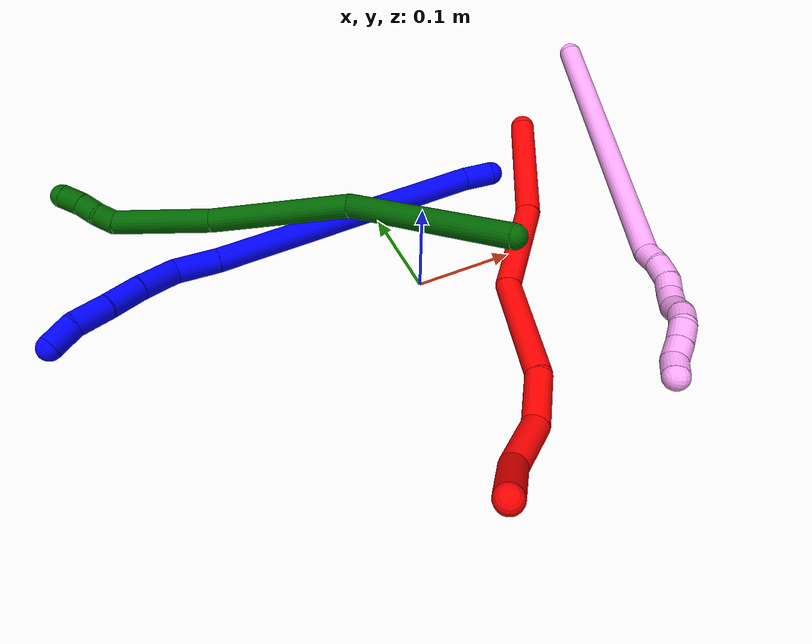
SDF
<sdf version="1.7">
 <world name="default">
  <model name="1">
   <static>0</static>
   <link name="1">
    <collision name="collision-cylinder-e_1_1_4">
     <pose>-0.01558 0.000152 -0.001564 -3.04487 -1.47028 3.03465</pose>
     <geometry><cylinder><radius>0.0125</radius><length>0.031319</length></cylinder></geometry>
     <surface>
      <friction><ode><mu>1.16</mu><mu2>1.16</mu2><slip1>0</slip1><slip2>0</slip2></ode></friction>
      <contact><ode><kp>1e+06</kp><kd>1</kd><max_vel>0</max_vel><min_depth>0.001</min_depth></ode></contact>
     </surface>
    </collision>
    <visual name="visual-cylinder-e_1_1_4">
     <pose>-0.01558 0.000152 -0.001564 -3.04487 -1.47028 3.03465</pose>
     <geometry><cylinder><radius>0.0125</radius><length>0.031319</length></cylinder></geometry>
     <material><ambient>0 0 1 1</ambient></material>
    </visual>
    <collision name="collision-cylinder-e_2_4_5">
     <pose>-0.166059 -0.002527 -0.047257 3.07755 -1.25404 -3.05323</pose>
     <geometry><cylinder><radius>0.0125</radius><length>0.283922</length></cylinder></geometry>
     <surface>
      <friction><ode><mu>1.16</mu><mu2>1.16</mu2><slip1>0</slip1><slip2>0</slip2></ode></friction>
      <contact><ode><kp>1e+06</kp><kd>1</kd><max_vel>0</max_vel><min_depth>0.001</min_depth></ode></contact>
     </surface>
    </collision>
    <visual name="visual-cylinder-e_2_4_5">
     <pose>-0.166059 -0.002527 -0.047257 3.07755 -1.25404 -3.05323</pose>
     <geometry><cylinder><radius>0.0125</radius><length>0.283922</length></cylinder></geometry>
     <material><ambient>0 0 1 1</ambient></material>
    </visual>
    <collision name="collision-cylinder-e_3_5_6">
     <pose>-0.32212 -0.00761 -0.09811 2.81826 -1.24744 -2.69581</pose>
     <geometry><cylinder><radius>0.0125</radius><length>0.044638</length></cylinder></geometry>
     <surface>
      <friction><ode><mu>1.16</mu><mu2>1.16</mu2><slip1>0</slip1><slip2>0</slip2></ode></friction>
      <contact><ode><kp>1e+06</kp><kd>1</kd><max_vel>0</max_vel><min_depth>0.001</min_depth></ode></contact>
     </surface>
    </collision>
    <visual name="visual-cylinder-e_3_5_6">
     <pose>-0.32212 -0.00761 -0.09811 2.81826 -1.24744 -2.69581</pose>
     <geometry><cylinder><radius>0.0125</radius><length>0.044638</length></cylinder></geometry>
     <material><ambient>0 0 1 1</ambient></material>
    </visual>
    <collision name="collision-cylinder-e_4_6_7">
     <pose>-0.35823 -0.01334 -0.118954 2.90014 -0.799183 -2.58212</pose>
     <geometry><cylinder><radius>0.0125</radius><length>0.041708</length></cylinder></geometry>
     <surface>
      <friction><ode><mu>1.16</mu><mu2>1.16</mu2><slip1>0</slip1><slip2>0</slip2></ode></friction>
      <contact><ode><kp>1e+06</kp><kd>1</kd><max_vel>0</max_vel><min_depth>0.001</min_depth></ode></contact>
     </surface>
    </collision>
    <visual name="visual-cylinder-e_4_6_7">
     <pose>-0.35823 -0.01334 -0.118954 2.90014 -0.799183 -2.58212</pose>
     <geometry><cylinder><radius>0.0125</radius><length>0.041708</length></cylinder></geometry>
     <material><ambient>0 0 1 1</ambient></material>
    </visual>
    <collision name="collision-cylinder-e_5_7_8">
     <pose>-0.38592 -0.018161 -0.145033 3.02974 -0.813932 -2.88327</pose>
     <geometry><cylinder><radius>0.0125</radius><length>0.035055</length></cylinder></geometry>
     <surface>
      <friction><ode><mu>1.16</mu><mu2>1.16</mu2><slip1>0</slip1><slip2>0</slip2></ode></friction>
      <contact><ode><kp>1e+06</kp><kd>1</kd><max_vel>0</max_vel><min_depth>0.001</min_depth></ode></contact>
     </surface>
    </collision>
    <visual name="visual-cylinder-e_5_7_8">
     <pose>-0.38592 -0.018161 -0.145033 3.02974 -0.813932 -2.88327</pose>
     <geometry><cylinder><radius>0.0125</radius><length>0.035055</length></cylinder></geometry>
     <material><ambient>0 0 1 1</ambient></material>
    </visual>
    <collision name="collision-cylinder-e_6_8_9">
     <pose>-0.412641 -0.020431 -0.167875 3.05663 -0.90755 -2.96773</pose>
     <geometry><cylinder><radius>0.0125</radius><length>0.035478</length></cylinder></geometry>
     <surface>
      <friction><ode><mu>1.16</mu><mu2>1.16</mu2><slip1>0</slip1><slip2>0</slip2></ode></friction>
      <contact><ode><kp>1e+06</kp><kd>1</kd><max_vel>0</max_vel><min_depth>0.001</min_depth></ode></contact>
     </surface>
    </collision>
    <visual name="visual-cylinder-e_6_8_9">
     <pose>-0.412641 -0.020431 -0.167875 3.05663 -0.90755 -2.96773</pose>
     <geometry><cylinder><radius>0.0125</radius><length>0.035478</length></cylinder></geometry>
     <material><ambient>0 0 1 1</ambient></material>
    </visual>
    <collision name="collision-cylinder-e_7_9_2">
     <pose>-0.436159 -0.018555 -0.188528 -2.86223 -0.753693 2.45888</pose>
     <geometry><cylinder><radius>0.0125</radius><length>0.02788</length></cylinder></geometry>
     <surface>
      <friction><ode><mu>1.16</mu><mu2>1.16</mu2><slip1>0</slip1><slip2>0</slip2></ode></friction>
      <contact><ode><kp>1e+06</kp><kd>1</kd><max_vel>0</max_vel><min_depth>0.001</min_depth></ode></contact>
     </surface>
    </collision>
    <visual name="visual-cylinder-e_7_9_2">
     <pose>-0.436159 -0.018555 -0.188528 -2.86223 -0.753693 2.45888</pose>
     <geometry><cylinder><radius>0.0125</radius><length>0.02788</length></cylinder></geometry>
     <material><ambient>0 0 1 1</ambient></material>
    </visual>
    <collision name="collision-sphere-2">
     <pose>-0.445698 -0.015752 -0.198299 0 -0 0</pose>
     <geometry><sphere><radius>0.0125</radius></sphere></geometry>
     <surface>
      <friction><ode><mu>1.16</mu><mu2>1.16</mu2><slip1>0</slip1><slip2>0</slip2></ode></friction>
      <contact><ode><kp>1e+06</kp><kd>1</kd><max_vel>0</max_vel><min_depth>0.001</min_depth></ode></contact>
     </surface>
    </collision>
    <visual name="visual-sphere-2">
     <pose>-0.445698 -0.015752 -0.198299 0 -0 0</pose>
     <geometry><sphere><radius>0.0125</radius></sphere></geometry>
     <material><ambient>0 0 1 1</ambient></material>
    </visual>
    <collision name="collision-sphere-9">
     <pose>-0.426619 -0.021358 -0.178758 0 -0 0</pose>
     <geometry><sphere><radius>0.0125</radius></sphere></geometry>
     <surface>
      <friction><ode><mu>1.16</mu><mu2>1.16</mu2><slip1>0</slip1><slip2>0</slip2></ode></friction>
      <contact><ode><kp>1e+06</kp><kd>1</kd><max_vel>0</max_vel><min_depth>0.001</min_depth></ode></contact>
     </surface>
    </collision>
    <visual name="visual-sphere-9">
     <pose>-0.426619 -0.021358 -0.178758 0 -0 0</pose>
     <geometry><sphere><radius>0.0125</radius></sphere></geometry>
     <material><ambient>0 0 1 1</ambient></material>
    </visual>
    <collision name="collision-sphere-4">
     <pose>-0.03116 0.000303 -0.003128 0 -0 0</pose>
     <geometry><sphere><radius>0.0125</radius></sphere></geometry>
     <surface>
      <friction><ode><mu>1.16</mu><mu2>1.16</mu2><slip1>0</slip1><slip2>0</slip2></ode></friction>
      <contact><ode><kp>1e+06</kp><kd>1</kd><max_vel>0</max_vel><min_depth>0.001</min_depth></ode></contact>
     </surface>
    </collision>
    <visual name="visual-sphere-4">
     <pose>-0.03116 0.000303 -0.003128 0 -0 0</pose>
     <geometry><sphere><radius>0.0125</radius></sphere></geometry>
     <material><ambient>0 0 1 1</ambient></material>
    </visual>
    <collision name="collision-sphere-1">
     <geometry><sphere><radius>0.0125</radius></sphere></geometry>
     <surface>
      <friction><ode><mu>1.16</mu><mu2>1.16</mu2><slip1>0</slip1><slip2>0</slip2></ode></friction>
      <contact><ode><kp>1e+06</kp><kd>1</kd><max_vel>0</max_vel><min_depth>0.001</min_depth></ode></contact>
     </surface>
    </collision>
    <visual name="visual-sphere-1">
     <geometry><sphere><radius>0.0125</radius></sphere></geometry>
     <material><ambient>0 0 1 1</ambient></material>
    </visual>
    <collision name="collision-sphere-8">
     <pose>-0.398662 -0.019504 -0.156993 0 -0 0</pose>
     <geometry><sphere><radius>0.0125</radius></sphere></geometry>
     <surface>
      <friction><ode><mu>1.16</mu><mu2>1.16</mu2><slip1>0</slip1><slip2>0</slip2></ode></friction>
      <contact><ode><kp>1e+06</kp><kd>1</kd><max_vel>0</max_vel><min_depth>0.001</min_depth></ode></contact>
     </surface>
    </collision>
    <visual name="visual-sphere-8">
     <pose>-0.398662 -0.019504 -0.156993 0 -0 0</pose>
     <geometry><sphere><radius>0.0125</radius></sphere></geometry>
     <material><ambient>0 0 1 1</ambient></material>
    </visual>
    <collision name="collision-sphere-5">
     <pose>-0.300957 -0.005357 -0.091385 0 -0 0</pose>
     <geometry><sphere><radius>0.0125</radius></sphere></geometry>
     <surface>
      <friction><ode><mu>1.16</mu><mu2>1.16</mu2><slip1>0</slip1><slip2>0</slip2></ode></friction>
      <contact><ode><kp>1e+06</kp><kd>1</kd><max_vel>0</max_vel><min_depth>0.001</min_depth></ode></contact>
     </surface>
    </collision>
    <visual name="visual-sphere-5">
     <pose>-0.300957 -0.005357 -0.091385 0 -0 0</pose>
     <geometry><sphere><radius>0.0125</radius></sphere></geometry>
     <material><ambient>0 0 1 1</ambient></material>
    </visual>
    <collision name="collision-sphere-6">
     <pose>-0.343282 -0.009863 -0.104834 0 -0 0</pose>
     <geometry><sphere><radius>0.0125</radius></sphere></geometry>
     <surface>
      <friction><ode><mu>1.16</mu><mu2>1.16</mu2><slip1>0</slip1><slip2>0</slip2></ode></friction>
      <contact><ode><kp>1e+06</kp><kd>1</kd><max_vel>0</max_vel><min_depth>0.001</min_depth></ode></contact>
     </surface>
    </collision>
    <visual name="visual-sphere-6">
     <pose>-0.343282 -0.009863 -0.104834 0 -0 0</pose>
     <geometry><sphere><radius>0.0125</radius></sphere></geometry>
     <material><ambient>0 0 1 1</ambient></material>
    </visual>
    <collision name="collision-sphere-7">
     <pose>-0.373178 -0.016817 -0.133073 0 -0 0</pose>
     <geometry><sphere><radius>0.0125</radius></sphere></geometry>
     <surface>
      <friction><ode><mu>1.16</mu><mu2>1.16</mu2><slip1>0</slip1><slip2>0</slip2></ode></friction>
      <contact><ode><kp>1e+06</kp><kd>1</kd><max_vel>0</max_vel><min_depth>0.001</min_depth></ode></contact>
     </surface>
    </collision>
    <visual name="visual-sphere-7">
     <pose>-0.373178 -0.016817 -0.133073 0 -0 0</pose>
     <geometry><sphere><radius>0.0125</radius></sphere></geometry>
     <material><ambient>0 0 1 1</ambient></material>
    </visual>
    <inertial>
     <pose>-0.234568 -0.006975 -0.078207 0 -0 0</pose>
     <mass>0.5</mass>
     <inertia>
      <ixx>-0.000702</ixx>
      <ixy>0</ixy>
      <ixz>0</ixz>
      <iyy>0.001891</iyy>
      <iyz>0</iyz>
      <izz>0.001875</izz>
     </inertia>
    </inertial>
   </link>
   <pose>0.140373 0.106531 0.013632 -1.74118 -0.075998 -0.28297</pose>
  </model>
  <model name="2">
   <static>0</static>
   <link name="2">
    <collision name="collision-cylinder-e_1_1_4">
     <pose>-0.027025 -0.051498 0.000444 1.56217 -0.483252 -0.479261</pose>
     <geometry><cylinder><radius>0.0125</radius><length>0.11632</length></cylinder></geometry>
     <surface>
      <friction><ode><mu>1.16</mu><mu2>1.16</mu2><slip1>0</slip1><slip2>0</slip2></ode></friction>
      <contact><ode><kp>1e+06</kp><kd>1</kd><max_vel>0</max_vel><min_depth>0.001</min_depth></ode></contact>
     </surface>
    </collision>
    <visual name="visual-cylinder-e_1_1_4">
     <pose>-0.027025 -0.051498 0.000444 1.56217 -0.483252 -0.479261</pose>
     <geometry><cylinder><radius>0.0125</radius><length>0.11632</length></cylinder></geometry>
     <material><ambient>1 0 0 1</ambient></material>
    </visual>
    <collision name="collision-cylinder-e_2_4_5">
     <pose>-0.08628 -0.138172 0.004632 1.46476 -0.738924 -0.670166</pose>
     <geometry><cylinder><radius>0.0125</radius><length>0.095712</length></cylinder></geometry>
     <surface>
      <friction><ode><mu>1.16</mu><mu2>1.16</mu2><slip1>0</slip1><slip2>0</slip2></ode></friction>
      <contact><ode><kp>1e+06</kp><kd>1</kd><max_vel>0</max_vel><min_depth>0.001</min_depth></ode></contact>
     </surface>
    </collision>
    <visual name="visual-cylinder-e_2_4_5">
     <pose>-0.08628 -0.138172 0.004632 1.46476 -0.738924 -0.670166</pose>
     <geometry><cylinder><radius>0.0125</radius><length>0.095712</length></cylinder></geometry>
     <material><ambient>1 0 0 1</ambient></material>
    </visual>
    <collision name="collision-cylinder-e_3_5_6">
     <pose>-0.13395 -0.225882 0.022948 1.30023 -0.275983 -0.210416</pose>
     <geometry><cylinder><radius>0.0125</radius><length>0.113324</length></cylinder></geometry>
     <surface>
      <friction><ode><mu>1.16</mu><mu2>1.16</mu2><slip1>0</slip1><slip2>0</slip2></ode></friction>
      <contact><ode><kp>1e+06</kp><kd>1</kd><max_vel>0</max_vel><min_depth>0.001</min_depth></ode></contact>
     </surface>
    </collision>
    <visual name="visual-cylinder-e_3_5_6">
     <pose>-0.13395 -0.225882 0.022948 1.30023 -0.275983 -0.210416</pose>
     <geometry><cylinder><radius>0.0125</radius><length>0.113324</length></cylinder></geometry>
     <material><ambient>1 0 0 1</ambient></material>
    </visual>
    <collision name="collision-cylinder-e_4_6_7">
     <pose>-0.163865 -0.299463 0.042777 1.326 -0.588387 -0.464671</pose>
     <geometry><cylinder><radius>0.0125</radius><length>0.052157</length></cylinder></geometry>
     <surface>
      <friction><ode><mu>1.16</mu><mu2>1.16</mu2><slip1>0</slip1><slip2>0</slip2></ode></friction>
      <contact><ode><kp>1e+06</kp><kd>1</kd><max_vel>0</max_vel><min_depth>0.001</min_depth></ode></contact>
     </surface>
    </collision>
    <visual name="visual-cylinder-e_4_6_7">
     <pose>-0.163865 -0.299463 0.042777 1.326 -0.588387 -0.464671</pose>
     <geometry><cylinder><radius>0.0125</radius><length>0.052157</length></cylinder></geometry>
     <material><ambient>1 0 0 1</ambient></material>
    </visual>
    <collision name="collision-cylinder-e_5_7_8">
     <pose>-0.19806 -0.334969 0.060869 0.844853 -0.795338 -0.373218</pose>
     <geometry><cylinder><radius>0.0125</radius><length>0.055235</length></cylinder></geometry>
     <surface>
      <friction><ode><mu>1.16</mu><mu2>1.16</mu2><slip1>0</slip1><slip2>0</slip2></ode></friction>
      <contact><ode><kp>1e+06</kp><kd>1</kd><max_vel>0</max_vel><min_depth>0.001</min_depth></ode></contact>
     </surface>
    </collision>
    <visual name="visual-cylinder-e_5_7_8">
     <pose>-0.19806 -0.334969 0.060869 0.844853 -0.795338 -0.373218</pose>
     <geometry><cylinder><radius>0.0125</radius><length>0.055235</length></cylinder></geometry>
     <material><ambient>1 0 0 1</ambient></material>
    </visual>
    <collision name="collision-cylinder-e_6_8_2">
     <pose>-0.230114 -0.366056 0.100201 0.560418 -0.375506 -0.109242</pose>
     <geometry><cylinder><radius>0.0125</radius><length>0.067252</length></cylinder></geometry>
     <surface>
      <friction><ode><mu>1.16</mu><mu2>1.16</mu2><slip1>0</slip1><slip2>0</slip2></ode></friction>
      <contact><ode><kp>1e+06</kp><kd>1</kd><max_vel>0</max_vel><min_depth>0.001</min_depth></ode></contact>
     </surface>
    </collision>
    <visual name="visual-cylinder-e_6_8_2">
     <pose>-0.230114 -0.366056 0.100201 0.560418 -0.375506 -0.109242</pose>
     <geometry><cylinder><radius>0.0125</radius><length>0.067252</length></cylinder></geometry>
     <material><ambient>1 0 0 1</ambient></material>
    </visual>
    <collision name="collision-sphere-2">
     <pose>-0.242446 -0.382684 0.126699 0 -0 0</pose>
     <geometry><sphere><radius>0.0125</radius></sphere></geometry>
     <surface>
      <friction><ode><mu>1.16</mu><mu2>1.16</mu2><slip1>0</slip1><slip2>0</slip2></ode></friction>
      <contact><ode><kp>1e+06</kp><kd>1</kd><max_vel>0</max_vel><min_depth>0.001</min_depth></ode></contact>
     </surface>
    </collision>
    <visual name="visual-sphere-2">
     <pose>-0.242446 -0.382684 0.126699 0 -0 0</pose>
     <geometry><sphere><radius>0.0125</radius></sphere></geometry>
     <material><ambient>1 0 0 1</ambient></material>
    </visual>
    <collision name="collision-sphere-4">
     <pose>-0.054049 -0.102996 0.000888 0 -0 0</pose>
     <geometry><sphere><radius>0.0125</radius></sphere></geometry>
     <surface>
      <friction><ode><mu>1.16</mu><mu2>1.16</mu2><slip1>0</slip1><slip2>0</slip2></ode></friction>
      <contact><ode><kp>1e+06</kp><kd>1</kd><max_vel>0</max_vel><min_depth>0.001</min_depth></ode></contact>
     </surface>
    </collision>
    <visual name="visual-sphere-4">
     <pose>-0.054049 -0.102996 0.000888 0 -0 0</pose>
     <geometry><sphere><radius>0.0125</radius></sphere></geometry>
     <material><ambient>1 0 0 1</ambient></material>
    </visual>
    <collision name="collision-sphere-1">
     <geometry><sphere><radius>0.0125</radius></sphere></geometry>
     <surface>
      <friction><ode><mu>1.16</mu><mu2>1.16</mu2><slip1>0</slip1><slip2>0</slip2></ode></friction>
      <contact><ode><kp>1e+06</kp><kd>1</kd><max_vel>0</max_vel><min_depth>0.001</min_depth></ode></contact>
     </surface>
    </collision>
    <visual name="visual-sphere-1">
     <geometry><sphere><radius>0.0125</radius></sphere></geometry>
     <material><ambient>1 0 0 1</ambient></material>
    </visual>
    <collision name="collision-sphere-8">
     <pose>-0.217782 -0.349428 0.073703 0 -0 0</pose>
     <geometry><sphere><radius>0.0125</radius></sphere></geometry>
     <surface>
      <friction><ode><mu>1.16</mu><mu2>1.16</mu2><slip1>0</slip1><slip2>0</slip2></ode></friction>
      <contact><ode><kp>1e+06</kp><kd>1</kd><max_vel>0</max_vel><min_depth>0.001</min_depth></ode></contact>
     </surface>
    </collision>
    <visual name="visual-sphere-8">
     <pose>-0.217782 -0.349428 0.073703 0 -0 0</pose>
     <geometry><sphere><radius>0.0125</radius></sphere></geometry>
     <material><ambient>1 0 0 1</ambient></material>
    </visual>
    <collision name="collision-sphere-5">
     <pose>-0.11851 -0.173348 0.008376 0 -0 0</pose>
     <geometry><sphere><radius>0.0125</radius></sphere></geometry>
     <surface>
      <friction><ode><mu>1.16</mu><mu2>1.16</mu2><slip1>0</slip1><slip2>0</slip2></ode></friction>
      <contact><ode><kp>1e+06</kp><kd>1</kd><max_vel>0</max_vel><min_depth>0.001</min_depth></ode></contact>
     </surface>
    </collision>
    <visual name="visual-sphere-5">
     <pose>-0.11851 -0.173348 0.008376 0 -0 0</pose>
     <geometry><sphere><radius>0.0125</radius></sphere></geometry>
     <material><ambient>1 0 0 1</ambient></material>
    </visual>
    <collision name="collision-sphere-6">
     <pose>-0.14939 -0.278417 0.037519 0 -0 0</pose>
     <geometry><sphere><radius>0.0125</radius></sphere></geometry>
     <surface>
      <friction><ode><mu>1.16</mu><mu2>1.16</mu2><slip1>0</slip1><slip2>0</slip2></ode></friction>
      <contact><ode><kp>1e+06</kp><kd>1</kd><max_vel>0</max_vel><min_depth>0.001</min_depth></ode></contact>
     </surface>
    </collision>
    <visual name="visual-sphere-6">
     <pose>-0.14939 -0.278417 0.037519 0 -0 0</pose>
     <geometry><sphere><radius>0.0125</radius></sphere></geometry>
     <material><ambient>1 0 0 1</ambient></material>
    </visual>
    <collision name="collision-sphere-7">
     <pose>-0.178339 -0.32051 0.048034 0 -0 0</pose>
     <geometry><sphere><radius>0.0125</radius></sphere></geometry>
     <surface>
      <friction><ode><mu>1.16</mu><mu2>1.16</mu2><slip1>0</slip1><slip2>0</slip2></ode></friction>
      <contact><ode><kp>1e+06</kp><kd>1</kd><max_vel>0</max_vel><min_depth>0.001</min_depth></ode></contact>
     </surface>
    </collision>
    <visual name="visual-sphere-7">
     <pose>-0.178339 -0.32051 0.048034 0 -0 0</pose>
     <geometry><sphere><radius>0.0125</radius></sphere></geometry>
     <material><ambient>1 0 0 1</ambient></material>
    </visual>
    <inertial>
     <pose>-0.123087 -0.207104 0.030855 0 -0 0</pose>
     <mass>0.5</mass>
     <inertia><ixx>0.000169</ixx><ixy>0</ixy><ixz>0</ixz><iyy>-6e-06</iyy><iyz>0</iyz><izz>0.000515</izz></inertia>
    </inertial>
   </link>
   <pose>0.187956 0.125175 0.049649 0.154969 -0.16923 -0.00711</pose>
  </model>
  <model name="4">
   <static>0</static>
   <link name="4">
    <collision name="collision-cylinder-e_1_1_4">
     <pose>0.019094 -0.154698 -0.022829 1.71731 0.121506 0.140693</pose>
     <geometry><cylinder><radius>0.0125</radius><length>0.315069</length></cylinder></geometry>
     <surface>
      <friction><ode><mu>1.16</mu><mu2>1.16</mu2><slip1>0</slip1><slip2>0</slip2></ode></friction>
      <contact><ode><kp>1e+06</kp><kd>1</kd><max_vel>0</max_vel><min_depth>0.001</min_depth></ode></contact>
     </surface>
    </collision>
    <visual name="visual-cylinder-e_1_1_4">
     <pose>0.019094 -0.154698 -0.022829 1.71731 0.121506 0.140693</pose>
     <geometry><cylinder><radius>0.0125</radius><length>0.315069</length></cylinder></geometry>
     <material><ambient>1 0.65098 0.996078 1</ambient></material>
    </visual>
    <collision name="collision-cylinder-e_2_4_5">
     <pose>0.035196 -0.319573 -0.04645 1.64853 -0.285152 -0.307878</pose>
     <geometry><cylinder><radius>0.0125</radius><length>0.021276</length></cylinder></geometry>
     <surface>
      <friction><ode><mu>1.16</mu><mu2>1.16</mu2><slip1>0</slip1><slip2>0</slip2></ode></friction>
      <contact><ode><kp>1e+06</kp><kd>1</kd><max_vel>0</max_vel><min_depth>0.001</min_depth></ode></contact>
     </surface>
    </collision>
    <visual name="visual-cylinder-e_2_4_5">
     <pose>0.035196 -0.319573 -0.04645 1.64853 -0.285152 -0.307878</pose>
     <geometry><cylinder><radius>0.0125</radius><length>0.021276</length></cylinder></geometry>
     <material><ambient>1 0.65098 0.996078 1</ambient></material>
    </visual>
    <collision name="collision-cylinder-e_3_5_6">
     <pose>0.031536 -0.34146 -0.048485 1.6765 -0.056613 -0.062934</pose>
     <geometry><cylinder><radius>0.0125</radius><length>0.023589</length></cylinder></geometry>
     <surface>
      <friction><ode><mu>1.16</mu><mu2>1.16</mu2><slip1>0</slip1><slip2>0</slip2></ode></friction>
      <contact><ode><kp>1e+06</kp><kd>1</kd><max_vel>0</max_vel><min_depth>0.001</min_depth></ode></contact>
     </surface>
    </collision>
    <visual name="visual-cylinder-e_3_5_6">
     <pose>0.031536 -0.34146 -0.048485 1.6765 -0.056613 -0.062934</pose>
     <geometry><cylinder><radius>0.0125</radius><length>0.023589</length></cylinder></geometry>
     <material><ambient>1 0.65098 0.996078 1</ambient></material>
    </visual>
    <collision name="collision-cylinder-e_4_6_7">
     <pose>0.031318 -0.362327 -0.053731 1.98297 0.044893 0.06861</pose>
     <geometry><cylinder><radius>0.0125</radius><length>0.02001</length></cylinder></geometry>
     <surface>
      <friction><ode><mu>1.16</mu><mu2>1.16</mu2><slip1>0</slip1><slip2>0</slip2></ode></friction>
      <contact><ode><kp>1e+06</kp><kd>1</kd><max_vel>0</max_vel><min_depth>0.001</min_depth></ode></contact>
     </surface>
    </collision>
    <visual name="visual-cylinder-e_4_6_7">
     <pose>0.031318 -0.362327 -0.053731 1.98297 0.044893 0.06861</pose>
     <geometry><cylinder><radius>0.0125</radius><length>0.02001</length></cylinder></geometry>
     <material><ambient>1 0.65098 0.996078 1</ambient></material>
    </visual>
    <collision name="collision-cylinder-e_5_7_8">
     <pose>0.03039 -0.380434 -0.061987 2.01431 -0.138113 -0.218002</pose>
     <geometry><cylinder><radius>0.0125</radius><length>0.020005</length></cylinder></geometry>
     <surface>
      <friction><ode><mu>1.16</mu><mu2>1.16</mu2><slip1>0</slip1><slip2>0</slip2></ode></friction>
      <contact><ode><kp>1e+06</kp><kd>1</kd><max_vel>0</max_vel><min_depth>0.001</min_depth></ode></contact>
     </surface>
    </collision>
    <visual name="visual-cylinder-e_5_7_8">
     <pose>0.03039 -0.380434 -0.061987 2.01431 -0.138113 -0.218002</pose>
     <geometry><cylinder><radius>0.0125</radius><length>0.020005</length></cylinder></geometry>
     <material><ambient>1 0.65098 0.996078 1</ambient></material>
    </visual>
    <collision name="collision-cylinder-e_6_8_9">
     <pose>0.023889 -0.397333 -0.069494 1.95947 -0.537723 -0.779173</pose>
     <geometry><cylinder><radius>0.0125</radius><length>0.020006</length></cylinder></geometry>
     <surface>
      <friction><ode><mu>1.16</mu><mu2>1.16</mu2><slip1>0</slip1><slip2>0</slip2></ode></friction>
      <contact><ode><kp>1e+06</kp><kd>1</kd><max_vel>0</max_vel><min_depth>0.001</min_depth></ode></contact>
     </surface>
    </collision>
    <visual name="visual-cylinder-e_6_8_9">
     <pose>0.023889 -0.397333 -0.069494 1.95947 -0.537723 -0.779173</pose>
     <geometry><cylinder><radius>0.0125</radius><length>0.020006</length></cylinder></geometry>
     <material><ambient>1 0.65098 0.996078 1</ambient></material>
    </visual>
    <collision name="collision-cylinder-e_7_9_10">
     <pose>0.01671 -0.413463 -0.078132 2.15278 -0.207021 -0.38075</pose>
     <geometry><cylinder><radius>0.0125</radius><length>0.02001</length></cylinder></geometry>
     <surface>
      <friction><ode><mu>1.16</mu><mu2>1.16</mu2><slip1>0</slip1><slip2>0</slip2></ode></friction>
      <contact><ode><kp>1e+06</kp><kd>1</kd><max_vel>0</max_vel><min_depth>0.001</min_depth></ode></contact>
     </surface>
    </collision>
    <visual name="visual-cylinder-e_7_9_10">
     <pose>0.01671 -0.413463 -0.078132 2.15278 -0.207021 -0.38075</pose>
     <geometry><cylinder><radius>0.0125</radius><length>0.02001</length></cylinder></geometry>
     <material><ambient>1 0.65098 0.996078 1</ambient></material>
    </visual>
    <collision name="collision-cylinder-e_8_10_11">
     <pose>0.017091 -0.429615 -0.089042 2.17703 0.24612 0.464011</pose>
     <geometry><cylinder><radius>0.0125</radius><length>0.020007</length></cylinder></geometry>
     <surface>
      <friction><ode><mu>1.16</mu><mu2>1.16</mu2><slip1>0</slip1><slip2>0</slip2></ode></friction>
      <contact><ode><kp>1e+06</kp><kd>1</kd><max_vel>0</max_vel><min_depth>0.001</min_depth></ode></contact>
     </surface>
    </collision>
    <visual name="visual-cylinder-e_8_10_11">
     <pose>0.017091 -0.429615 -0.089042 2.17703 0.24612 0.464011</pose>
     <geometry><cylinder><radius>0.0125</radius><length>0.020007</length></cylinder></geometry>
     <material><ambient>1 0.65098 0.996078 1</ambient></material>
    </visual>
    <collision name="collision-cylinder-e_9_11_12">
     <pose>0.021827 -0.444999 -0.10088 2.27617 0.232002 0.494221</pose>
     <geometry><cylinder><radius>0.0125</radius><length>0.020001</length></cylinder></geometry>
     <surface>
      <friction><ode><mu>1.16</mu><mu2>1.16</mu2><slip1>0</slip1><slip2>0</slip2></ode></friction>
      <contact><ode><kp>1e+06</kp><kd>1</kd><max_vel>0</max_vel><min_depth>0.001</min_depth></ode></contact>
     </surface>
    </collision>
    <visual name="visual-cylinder-e_9_11_12">
     <pose>0.021827 -0.444999 -0.10088 2.27617 0.232002 0.494221</pose>
     <geometry><cylinder><radius>0.0125</radius><length>0.020001</length></cylinder></geometry>
     <material><ambient>1 0.65098 0.996078 1</ambient></material>
    </visual>
    <collision name="collision-cylinder-e_10_12_2">
     <pose>0.022931 -0.460987 -0.112216 2.10081 -0.119661 -0.208296</pose>
     <geometry><cylinder><radius>0.0125</radius><length>0.020028</length></cylinder></geometry>
     <surface>
      <friction><ode><mu>1.16</mu><mu2>1.16</mu2><slip1>0</slip1><slip2>0</slip2></ode></friction>
      <contact><ode><kp>1e+06</kp><kd>1</kd><max_vel>0</max_vel><min_depth>0.001</min_depth></ode></contact>
     </surface>
    </collision>
    <visual name="visual-cylinder-e_10_12_2">
     <pose>0.022931 -0.460987 -0.112216 2.10081 -0.119661 -0.208296</pose>
     <geometry><cylinder><radius>0.0125</radius><length>0.020028</length></cylinder></geometry>
     <material><ambient>1 0.65098 0.996078 1</ambient></material>
    </visual>
    <collision name="collision-sphere-2">
     <pose>0.021736 -0.469566 -0.117242 0 -0 0</pose>
     <geometry><sphere><radius>0.0125</radius></sphere></geometry>
     <surface>
      <friction><ode><mu>1.16</mu><mu2>1.16</mu2><slip1>0</slip1><slip2>0</slip2></ode></friction>
      <contact><ode><kp>1e+06</kp><kd>1</kd><max_vel>0</max_vel><min_depth>0.001</min_depth></ode></contact>
     </surface>
    </collision>
    <visual name="visual-sphere-2">
     <pose>0.021736 -0.469566 -0.117242 0 -0 0</pose>
     <geometry><sphere><radius>0.0125</radius></sphere></geometry>
     <material><ambient>1 0.65098 0.996078 1</ambient></material>
    </visual>
    <collision name="collision-sphere-12">
     <pose>0.024127 -0.452409 -0.10719 0 -0 0</pose>
     <geometry><sphere><radius>0.0125</radius></sphere></geometry>
     <surface>
      <friction><ode><mu>1.16</mu><mu2>1.16</mu2><slip1>0</slip1><slip2>0</slip2></ode></friction>
      <contact><ode><kp>1e+06</kp><kd>1</kd><max_vel>0</max_vel><min_depth>0.001</min_depth></ode></contact>
     </surface>
    </collision>
    <visual name="visual-sphere-12">
     <pose>0.024127 -0.452409 -0.10719 0 -0 0</pose>
     <geometry><sphere><radius>0.0125</radius></sphere></geometry>
     <material><ambient>1 0.65098 0.996078 1</ambient></material>
    </visual>
    <collision name="collision-sphere-11">
     <pose>0.019528 -0.437588 -0.09457 0 -0 0</pose>
     <geometry><sphere><radius>0.0125</radius></sphere></geometry>
     <surface>
      <friction><ode><mu>1.16</mu><mu2>1.16</mu2><slip1>0</slip1><slip2>0</slip2></ode></friction>
      <contact><ode><kp>1e+06</kp><kd>1</kd><max_vel>0</max_vel><min_depth>0.001</min_depth></ode></contact>
     </surface>
    </collision>
    <visual name="visual-sphere-11">
     <pose>0.019528 -0.437588 -0.09457 0 -0 0</pose>
     <geometry><sphere><radius>0.0125</radius></sphere></geometry>
     <material><ambient>1 0.65098 0.996078 1</ambient></material>
    </visual>
    <collision name="collision-sphere-10">
     <pose>0.014653 -0.421642 -0.083514 0 -0 0</pose>
     <geometry><sphere><radius>0.0125</radius></sphere></geometry>
     <surface>
      <friction><ode><mu>1.16</mu><mu2>1.16</mu2><slip1>0</slip1><slip2>0</slip2></ode></friction>
      <contact><ode><kp>1e+06</kp><kd>1</kd><max_vel>0</max_vel><min_depth>0.001</min_depth></ode></contact>
     </surface>
    </collision>
    <visual name="visual-sphere-10">
     <pose>0.014653 -0.421642 -0.083514 0 -0 0</pose>
     <geometry><sphere><radius>0.0125</radius></sphere></geometry>
     <material><ambient>1 0.65098 0.996078 1</ambient></material>
    </visual>
    <collision name="collision-sphere-9">
     <pose>0.018766 -0.405283 -0.07275 0 -0 0</pose>
     <geometry><sphere><radius>0.0125</radius></sphere></geometry>
     <surface>
      <friction><ode><mu>1.16</mu><mu2>1.16</mu2><slip1>0</slip1><slip2>0</slip2></ode></friction>
      <contact><ode><kp>1e+06</kp><kd>1</kd><max_vel>0</max_vel><min_depth>0.001</min_depth></ode></contact>
     </surface>
    </collision>
    <visual name="visual-sphere-9">
     <pose>0.018766 -0.405283 -0.07275 0 -0 0</pose>
     <geometry><sphere><radius>0.0125</radius></sphere></geometry>
     <material><ambient>1 0.65098 0.996078 1</ambient></material>
    </visual>
    <collision name="collision-sphere-4">
     <pose>0.038189 -0.309395 -0.045657 0 -0 0</pose>
     <geometry><sphere><radius>0.0125</radius></sphere></geometry>
     <surface>
      <friction><ode><mu>1.16</mu><mu2>1.16</mu2><slip1>0</slip1><slip2>0</slip2></ode></friction>
      <contact><ode><kp>1e+06</kp><kd>1</kd><max_vel>0</max_vel><min_depth>0.001</min_depth></ode></contact>
     </surface>
    </collision>
    <visual name="visual-sphere-4">
     <pose>0.038189 -0.309395 -0.045657 0 -0 0</pose>
     <geometry><sphere><radius>0.0125</radius></sphere></geometry>
     <material><ambient>1 0.65098 0.996078 1</ambient></material>
    </visual>
    <collision name="collision-sphere-1">
     <geometry><sphere><radius>0.0125</radius></sphere></geometry>
     <surface>
      <friction><ode><mu>1.16</mu><mu2>1.16</mu2><slip1>0</slip1><slip2>0</slip2></ode></friction>
      <contact><ode><kp>1e+06</kp><kd>1</kd><max_vel>0</max_vel><min_depth>0.001</min_depth></ode></contact>
     </surface>
    </collision>
    <visual name="visual-sphere-1">
     <geometry><sphere><radius>0.0125</radius></sphere></geometry>
     <material><ambient>1 0.65098 0.996078 1</ambient></material>
    </visual>
    <collision name="collision-sphere-8">
     <pose>0.029013 -0.389382 -0.066238 0 -0 0</pose>
     <geometry><sphere><radius>0.0125</radius></sphere></geometry>
     <surface>
      <friction><ode><mu>1.16</mu><mu2>1.16</mu2><slip1>0</slip1><slip2>0</slip2></ode></friction>
      <contact><ode><kp>1e+06</kp><kd>1</kd><max_vel>0</max_vel><min_depth>0.001</min_depth></ode></contact>
     </surface>
    </collision>
    <visual name="visual-sphere-8">
     <pose>0.029013 -0.389382 -0.066238 0 -0 0</pose>
     <geometry><sphere><radius>0.0125</radius></sphere></geometry>
     <material><ambient>1 0.65098 0.996078 1</ambient></material>
    </visual>
    <collision name="collision-sphere-5">
     <pose>0.032204 -0.32975 -0.047243 0 -0 0</pose>
     <geometry><sphere><radius>0.0125</radius></sphere></geometry>
     <surface>
      <friction><ode><mu>1.16</mu><mu2>1.16</mu2><slip1>0</slip1><slip2>0</slip2></ode></friction>
      <contact><ode><kp>1e+06</kp><kd>1</kd><max_vel>0</max_vel><min_depth>0.001</min_depth></ode></contact>
     </surface>
    </collision>
    <visual name="visual-sphere-5">
     <pose>0.032204 -0.32975 -0.047243 0 -0 0</pose>
     <geometry><sphere><radius>0.0125</radius></sphere></geometry>
     <material><ambient>1 0.65098 0.996078 1</ambient></material>
    </visual>
    <collision name="collision-sphere-6">
     <pose>0.030869 -0.35317 -0.049727 0 -0 0</pose>
     <geometry><sphere><radius>0.0125</radius></sphere></geometry>
     <surface>
      <friction><ode><mu>1.16</mu><mu2>1.16</mu2><slip1>0</slip1><slip2>0</slip2></ode></friction>
      <contact><ode><kp>1e+06</kp><kd>1</kd><max_vel>0</max_vel><min_depth>0.001</min_depth></ode></contact>
     </surface>
    </collision>
    <visual name="visual-sphere-6">
     <pose>0.030869 -0.35317 -0.049727 0 -0 0</pose>
     <geometry><sphere><radius>0.0125</radius></sphere></geometry>
     <material><ambient>1 0.65098 0.996078 1</ambient></material>
    </visual>
    <collision name="collision-sphere-7">
     <pose>0.031767 -0.371485 -0.057735 0 -0 0</pose>
     <geometry><sphere><radius>0.0125</radius></sphere></geometry>
     <surface>
      <friction><ode><mu>1.16</mu><mu2>1.16</mu2><slip1>0</slip1><slip2>0</slip2></ode></friction>
      <contact><ode><kp>1e+06</kp><kd>1</kd><max_vel>0</max_vel><min_depth>0.001</min_depth></ode></contact>
     </surface>
    </collision>
    <visual name="visual-sphere-7">
     <pose>0.031767 -0.371485 -0.057735 0 -0 0</pose>
     <geometry><sphere><radius>0.0125</radius></sphere></geometry>
     <material><ambient>1 0.65098 0.996078 1</ambient></material>
    </visual>
    <inertial>
     <pose>0.021587 -0.242811 -0.04128 0 -0 0</pose>
     <mass>0.5</mass>
     <inertia>
      <ixx>0.002951</ixx>
      <ixy>0</ixy>
      <ixz>0</ixz>
      <iyy>-1.2e-05</iyy>
      <iyz>0</iyz>
      <izz>0.002258</izz>
     </inertia>
    </inertial>
   </link>
   <pose>0.320563 0.230135 0.049642 2.98039 1.32264 2.83871</pose>
  </model>
  <model name="6">
   <static>0</static>
   <link name="6">
    <collision name="collision-cylinder-e_1_1_4">
     <pose>-0.065061 -0.008124 0.064947 0.124442 -0.782388 -0.051381</pose>
     <geometry><cylinder><radius>0.0125</radius><length>0.184575</length></cylinder></geometry>
     <surface>
      <friction><ode><mu>1.16</mu><mu2>1.16</mu2><slip1>0</slip1><slip2>0</slip2></ode></friction>
      <contact><ode><kp>1e+06</kp><kd>1</kd><max_vel>0</max_vel><min_depth>0.001</min_depth></ode></contact>
     </surface>
    </collision>
    <visual name="visual-cylinder-e_1_1_4">
     <pose>-0.065061 -0.008124 0.064947 0.124442 -0.782388 -0.051381</pose>
     <geometry><cylinder><radius>0.0125</radius><length>0.184575</length></cylinder></geometry>
     <material><ambient>0 0.392157 0.003922 1</ambient></material>
    </visual>
    <collision name="collision-cylinder-e_2_4_5">
     <pose>-0.17734 0.012774 0.17941 -0.530154 -0.688438 0.194025</pose>
     <geometry><cylinder><radius>0.0125</radius><length>0.148644</length></cylinder></geometry>
     <surface>
      <friction><ode><mu>1.16</mu><mu2>1.16</mu2><slip1>0</slip1><slip2>0</slip2></ode></friction>
      <contact><ode><kp>1e+06</kp><kd>1</kd><max_vel>0</max_vel><min_depth>0.001</min_depth></ode></contact>
     </surface>
    </collision>
    <visual name="visual-cylinder-e_2_4_5">
     <pose>-0.17734 0.012774 0.17941 -0.530154 -0.688438 0.194025</pose>
     <geometry><cylinder><radius>0.0125</radius><length>0.148644</length></cylinder></geometry>
     <material><ambient>0 0.392157 0.003922 1</ambient></material>
    </visual>
    <collision name="collision-cylinder-e_3_5_6">
     <pose>-0.260711 0.064146 0.257771 -0.6592 -0.780742 0.279685</pose>
     <geometry><cylinder><radius>0.0125</radius><length>0.102733</length></cylinder></geometry>
     <surface>
      <friction><ode><mu>1.16</mu><mu2>1.16</mu2><slip1>0</slip1><slip2>0</slip2></ode></friction>
      <contact><ode><kp>1e+06</kp><kd>1</kd><max_vel>0</max_vel><min_depth>0.001</min_depth></ode></contact>
     </surface>
    </collision>
    <visual name="visual-cylinder-e_3_5_6">
     <pose>-0.260711 0.064146 0.257771 -0.6592 -0.780742 0.279685</pose>
     <geometry><cylinder><radius>0.0125</radius><length>0.102733</length></cylinder></geometry>
     <material><ambient>0 0.392157 0.003922 1</ambient></material>
    </visual>
    <collision name="collision-cylinder-e_4_6_7">
     <pose>-0.306389 0.088744 0.288863 -0.785661 -1.24878 0.580298</pose>
     <geometry><cylinder><radius>0.0125</radius><length>0.020084</length></cylinder></geometry>
     <surface>
      <friction><ode><mu>1.16</mu><mu2>1.16</mu2><slip1>0</slip1><slip2>0</slip2></ode></friction>
      <contact><ode><kp>1e+06</kp><kd>1</kd><max_vel>0</max_vel><min_depth>0.001</min_depth></ode></contact>
     </surface>
    </collision>
    <visual name="visual-cylinder-e_4_6_7">
     <pose>-0.306389 0.088744 0.288863 -0.785661 -1.24878 0.580298</pose>
     <geometry><cylinder><radius>0.0125</radius><length>0.020084</length></cylinder></geometry>
     <material><ambient>0 0.392157 0.003922 1</ambient></material>
    </visual>
    <collision name="collision-cylinder-e_5_7_8">
     <pose>-0.326012 0.09069 0.294726 0.083181 -1.22571 -0.058508</pose>
     <geometry><cylinder><radius>0.0125</radius><length>0.021459</length></cylinder></geometry>
     <surface>
      <friction><ode><mu>1.16</mu><mu2>1.16</mu2><slip1>0</slip1><slip2>0</slip2></ode></friction>
      <contact><ode><kp>1e+06</kp><kd>1</kd><max_vel>0</max_vel><min_depth>0.001</min_depth></ode></contact>
     </surface>
    </collision>
    <visual name="visual-cylinder-e_5_7_8">
     <pose>-0.326012 0.09069 0.294726 0.083181 -1.22571 -0.058508</pose>
     <geometry><cylinder><radius>0.0125</radius><length>0.021459</length></cylinder></geometry>
     <material><ambient>0 0.392157 0.003922 1</ambient></material>
    </visual>
    <collision name="collision-cylinder-e_6_8_2">
     <pose>-0.346526 0.09246 0.30206 -0.508466 -1.18304 0.345637</pose>
     <geometry><cylinder><radius>0.0125</radius><length>0.022504</length></cylinder></geometry>
     <surface>
      <friction><ode><mu>1.16</mu><mu2>1.16</mu2><slip1>0</slip1><slip2>0</slip2></ode></friction>
      <contact><ode><kp>1e+06</kp><kd>1</kd><max_vel>0</max_vel><min_depth>0.001</min_depth></ode></contact>
     </surface>
    </collision>
    <visual name="visual-cylinder-e_6_8_2">
     <pose>-0.346526 0.09246 0.30206 -0.508466 -1.18304 0.345637</pose>
     <geometry><cylinder><radius>0.0125</radius><length>0.022504</length></cylinder></geometry>
     <material><ambient>0 0.392157 0.003922 1</ambient></material>
    </visual>
    <collision name="collision-sphere-2">
     <pose>-0.356943 0.094531 0.305776 0 -0 0</pose>
     <geometry><sphere><radius>0.0125</radius></sphere></geometry>
     <surface>
      <friction><ode><mu>1.16</mu><mu2>1.16</mu2><slip1>0</slip1><slip2>0</slip2></ode></friction>
      <contact><ode><kp>1e+06</kp><kd>1</kd><max_vel>0</max_vel><min_depth>0.001</min_depth></ode></contact>
     </surface>
    </collision>
    <visual name="visual-sphere-2">
     <pose>-0.356943 0.094531 0.305776 0 -0 0</pose>
     <geometry><sphere><radius>0.0125</radius></sphere></geometry>
     <material><ambient>0 0.392157 0.003922 1</ambient></material>
    </visual>
    <collision name="collision-sphere-4">
     <pose>-0.130121 -0.016248 0.129894 0 -0 0</pose>
     <geometry><sphere><radius>0.0125</radius></sphere></geometry>
     <surface>
      <friction><ode><mu>1.16</mu><mu2>1.16</mu2><slip1>0</slip1><slip2>0</slip2></ode></friction>
      <contact><ode><kp>1e+06</kp><kd>1</kd><max_vel>0</max_vel><min_depth>0.001</min_depth></ode></contact>
     </surface>
    </collision>
    <visual name="visual-sphere-4">
     <pose>-0.130121 -0.016248 0.129894 0 -0 0</pose>
     <geometry><sphere><radius>0.0125</radius></sphere></geometry>
     <material><ambient>0 0.392157 0.003922 1</ambient></material>
    </visual>
    <collision name="collision-sphere-1">
     <geometry><sphere><radius>0.0125</radius></sphere></geometry>
     <surface>
      <friction><ode><mu>1.16</mu><mu2>1.16</mu2><slip1>0</slip1><slip2>0</slip2></ode></friction>
      <contact><ode><kp>1e+06</kp><kd>1</kd><max_vel>0</max_vel><min_depth>0.001</min_depth></ode></contact>
     </surface>
    </collision>
    <visual name="visual-sphere-1">
     <geometry><sphere><radius>0.0125</radius></sphere></geometry>
     <material><ambient>0 0.392157 0.003922 1</ambient></material>
    </visual>
    <collision name="collision-sphere-8">
     <pose>-0.336109 0.090389 0.298344 0 -0 0</pose>
     <geometry><sphere><radius>0.0125</radius></sphere></geometry>
     <surface>
      <friction><ode><mu>1.16</mu><mu2>1.16</mu2><slip1>0</slip1><slip2>0</slip2></ode></friction>
      <contact><ode><kp>1e+06</kp><kd>1</kd><max_vel>0</max_vel><min_depth>0.001</min_depth></ode></contact>
     </surface>
    </collision>
    <visual name="visual-sphere-8">
     <pose>-0.336109 0.090389 0.298344 0 -0 0</pose>
     <geometry><sphere><radius>0.0125</radius></sphere></geometry>
     <material><ambient>0 0.392157 0.003922 1</ambient></material>
    </visual>
    <collision name="collision-sphere-5">
     <pose>-0.224559 0.041797 0.228926 0 -0 0</pose>
     <geometry><sphere><radius>0.0125</radius></sphere></geometry>
     <surface>
      <friction><ode><mu>1.16</mu><mu2>1.16</mu2><slip1>0</slip1><slip2>0</slip2></ode></friction>
      <contact><ode><kp>1e+06</kp><kd>1</kd><max_vel>0</max_vel><min_depth>0.001</min_depth></ode></contact>
     </surface>
    </collision>
    <visual name="visual-sphere-5">
     <pose>-0.224559 0.041797 0.228926 0 -0 0</pose>
     <geometry><sphere><radius>0.0125</radius></sphere></geometry>
     <material><ambient>0 0.392157 0.003922 1</ambient></material>
    </visual>
    <collision name="collision-sphere-6">
     <pose>-0.296864 0.086496 0.286616 0 -0 0</pose>
     <geometry><sphere><radius>0.0125</radius></sphere></geometry>
     <surface>
      <friction><ode><mu>1.16</mu><mu2>1.16</mu2><slip1>0</slip1><slip2>0</slip2></ode></friction>
      <contact><ode><kp>1e+06</kp><kd>1</kd><max_vel>0</max_vel><min_depth>0.001</min_depth></ode></contact>
     </surface>
    </collision>
    <visual name="visual-sphere-6">
     <pose>-0.296864 0.086496 0.286616 0 -0 0</pose>
     <geometry><sphere><radius>0.0125</radius></sphere></geometry>
     <material><ambient>0 0.392157 0.003922 1</ambient></material>
    </visual>
    <collision name="collision-sphere-7">
     <pose>-0.315915 0.090992 0.291109 0 -0 0</pose>
     <geometry><sphere><radius>0.0125</radius></sphere></geometry>
     <surface>
      <friction><ode><mu>1.16</mu><mu2>1.16</mu2><slip1>0</slip1><slip2>0</slip2></ode></friction>
      <contact><ode><kp>1e+06</kp><kd>1</kd><max_vel>0</max_vel><min_depth>0.001</min_depth></ode></contact>
     </surface>
    </collision>
    <visual name="visual-sphere-7">
     <pose>-0.315915 0.090992 0.291109 0 -0 0</pose>
     <geometry><sphere><radius>0.0125</radius></sphere></geometry>
     <material><ambient>0 0.392157 0.003922 1</ambient></material>
    </visual>
    <inertial>
     <pose>-0.172201 0.025597 0.168123 0 -0 0</pose>
     <mass>0.5</mass>
     <inertia>
      <ixx>0.000667</ixx>
      <ixy>0</ixy>
      <ixz>0</ixz>
      <iyy>0.000919</iyy>
      <iyz>0</iyz>
      <izz>0.000543</izz>
     </inertia>
    </inertial>
   </link>
   <pose>0.066152 -0.055201 0.088947 2.95799 0.537055 -1.01298</pose>
  </model>
 </world>
</sdf>
